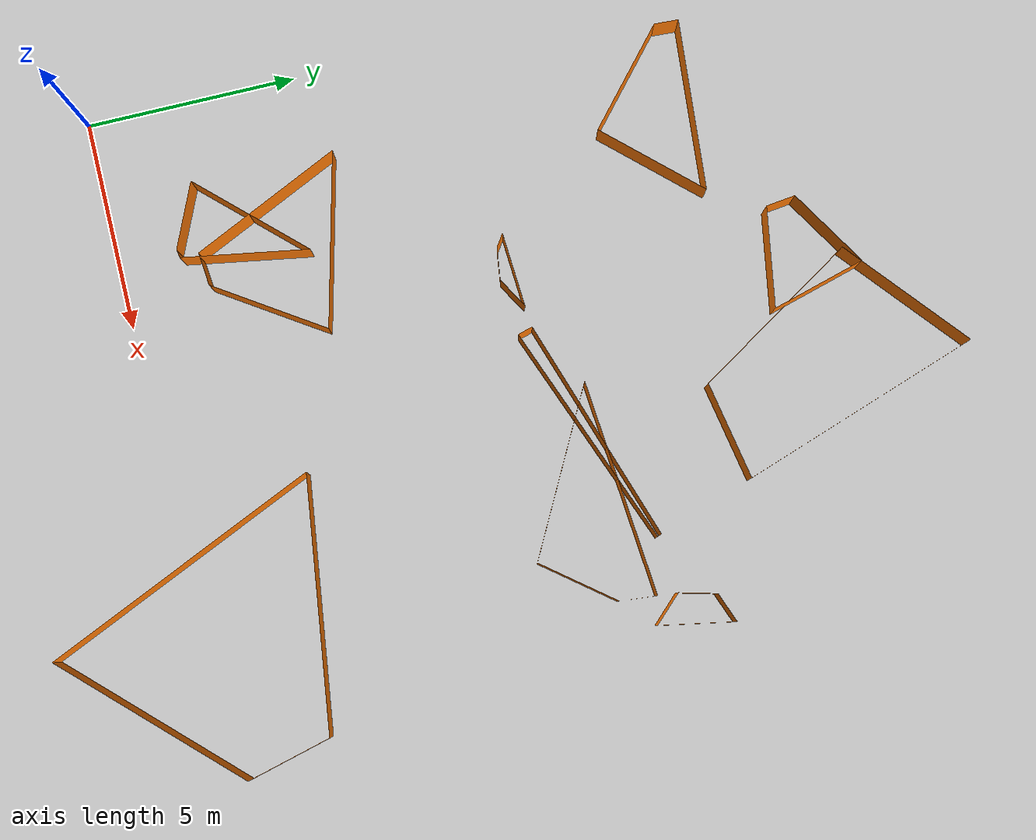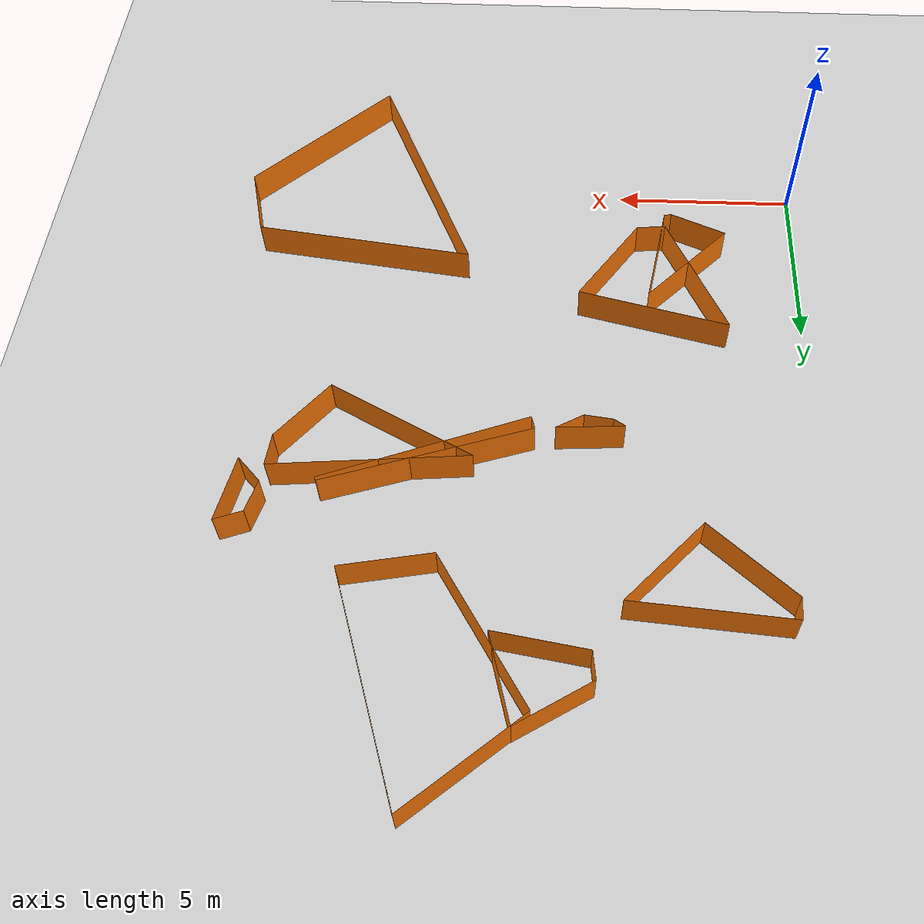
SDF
<sdf version="1.7">
 <world name="default">
  <light name="sun" type="directional">
   <pose>0 0 10 0 -0 0</pose>
   <diffuse>0.8 0.8 0.8 1</diffuse>
   <specular>0.2 0.2 0.2 1</specular>
   <attenuation>
    <range>1000</range>
    <constant>0.9</constant>
    <linear>0.01</linear>
    <quadratic>0.001</quadratic>
   </attenuation>
   <direction>-0.5 0.1 -0.9</direction>
   <spot><inner_angle>0</inner_angle><outer_angle>0</outer_angle><falloff>0</falloff></spot>
  </light>
  <model name="ground_plane">
   <static>1</static>
   <link name="link">
    <collision name="collision">
     <geometry><plane><normal>0 0 1</normal><size>100 100</size></plane></geometry>
     <surface>
      <contact><collide_bitmask>65535</collide_bitmask></contact>
      <friction><ode><mu>100</mu><mu2>50</mu2></ode></friction>
     </surface>
    </collision>
    <visual name="visual">
     <cast_shadows>0</cast_shadows>
     <geometry><plane><normal>0 0 1</normal><size>100 100</size></plane></geometry>
     <material>
      <script><uri>file://media/materials/scripts/gazebo.material</uri><name>Gazebo/Grey</name></script>
     </material>
    </visual>
   </link>
  </model>
  <gravity>0 0 -9.8</gravity>
  <magnetic_field>6e-06 2.3e-05 -4.2e-05</magnetic_field>
  <atmosphere type="adiabatic"/>
  <physics type="ode">
   <max_step_size>0.001</max_step_size>
   <real_time_factor>1</real_time_factor>
   <real_time_update_rate>1000</real_time_update_rate>
  </physics>
  <scene><ambient>0.4 0.4 0.4 1</ambient><background>0.7 0.7 0.7 1</background><shadows>1</shadows></scene>
  <spherical_coordinates>
   <surface_model>EARTH_WGS84</surface_model>
   <latitude_deg>0</latitude_deg>
   <longitude_deg>0</longitude_deg>
   <elevation>0</elevation>
   <heading_deg>0</heading_deg>
  </spherical_coordinates>
  <model name="Untitled">
   <pose>7.933 7.819 0 0 -0 0</pose>
   <link name="Wall_0">
    <collision name="Wall_0_Collision">
     <geometry><box><size>0.773179 0 1</size></box></geometry>
     <pose>0 0 0.5 0 -0 0</pose>
    </collision>
    <visual name="Wall_0_Visual">
     <pose>0 0 0.5 0 -0 0</pose>
     <geometry><box><size>0.773179 0 1</size></box></geometry>
     <material>
      <script><uri>file://media/materials/scripts/gazebo.material</uri><name>Gazebo/Grey</name></script>
      <ambient>0.996078 0.47451 0.0196078 1</ambient>
     </material>
     <meta><layer>0</layer></meta>
    </visual>
    <pose>6.6425 4.132 0 0 -0 -2.77934</pose>
   </link>
   <link name="Wall_1">
    <collision name="Wall_1_Collision">
     <geometry><box><size>0.895766 0 1</size></box></geometry>
     <pose>0 0 0.5 0 -0 0</pose>
    </collision>
    <visual name="Wall_1_Visual">
     <pose>0 0 0.5 0 -0 0</pose>
     <geometry><box><size>0.895766 0 1</size></box></geometry>
     <material>
      <script><uri>file://media/materials/scripts/gazebo.material</uri><name>Gazebo/Grey</name></script>
      <ambient>0.996078 0.47451 0.0196078 1</ambient>
     </material>
     <meta><layer>0</layer></meta>
    </visual>
    <pose>6.1665 3.562 0 0 -0 -1.82931</pose>
   </link>
   <link name="Wall_10">
    <collision name="Wall_10_Collision">
     <geometry><box><size>0.831538 0 1</size></box></geometry>
     <pose>0 0 0.5 0 -0 0</pose>
    </collision>
    <visual name="Wall_10_Visual">
     <pose>0 0 0.5 0 -0 0</pose>
     <geometry><box><size>0.831538 0 1</size></box></geometry>
     <material>
      <script><uri>file://media/materials/scripts/gazebo.material</uri><name>Gazebo/Grey</name></script>
      <ambient>0.996078 0.47451 0.0196078 1</ambient>
     </material>
     <meta><layer>0</layer></meta>
    </visual>
    <pose>-1.542 1.044 0 0 -0 0.523919</pose>
   </link>
   <link name="Wall_11">
    <collision name="Wall_11_Collision">
     <geometry><box><size>1.77972 0 1</size></box></geometry>
     <pose>0 0 0.5 0 -0 0</pose>
    </collision>
    <visual name="Wall_11_Visual">
     <pose>0 0 0.5 0 -0 0</pose>
     <geometry><box><size>1.77972 0 1</size></box></geometry>
     <material>
      <script><uri>file://media/materials/scripts/gazebo.material</uri><name>Gazebo/Grey</name></script>
      <ambient>0.996078 0.47451 0.0196078 1</ambient>
     </material>
     <meta><layer>0</layer></meta>
    </visual>
    <pose>-2.07 1.1945 0 0 -0 -3.07693</pose>
   </link>
   <link name="Wall_12">
    <collision name="Wall_12_Collision">
     <geometry><box><size>0.358063 0 1</size></box></geometry>
     <pose>0 0 0.5 0 -0 0</pose>
    </collision>
    <visual name="Wall_12_Visual">
     <pose>0 0 0.5 0 -0 0</pose>
     <geometry><box><size>0.358063 0 1</size></box></geometry>
     <material>
      <script><uri>file://media/materials/scripts/gazebo.material</uri><name>Gazebo/Grey</name></script>
      <ambient>0.996078 0.47451 0.0196078 1</ambient>
     </material>
     <meta><layer>0</layer></meta>
    </visual>
    <pose>-2.8095 1.037 0 0 -0 -0.59265</pose>
   </link>
   <link name="Wall_13">
    <collision name="Wall_13_Collision">
     <geometry><box><size>0.765691 0 1</size></box></geometry>
     <pose>0 0 0.5 0 -0 0</pose>
    </collision>
    <visual name="Wall_13_Visual">
     <pose>0 0 0.5 0 -0 0</pose>
     <geometry><box><size>0.765691 0 1</size></box></geometry>
     <material>
      <script><uri>file://media/materials/scripts/gazebo.material</uri><name>Gazebo/Grey</name></script>
      <ambient>0.996078 0.47451 0.0196078 1</ambient>
     </material>
     <meta><layer>0</layer></meta>
    </visual>
    <pose>-2.2815 0.886499 0 0 -0 -0.132293</pose>
   </link>
   <link name="Wall_15">
    <collision name="Wall_15_Collision">
     <geometry><box><size>3.2252 0 1</size></box></geometry>
     <pose>0 0 0.5 0 -0 0</pose>
    </collision>
    <visual name="Wall_15_Visual">
     <pose>0 0 0.5 0 -0 0</pose>
     <geometry><box><size>3.2252 0 1</size></box></geometry>
     <material>
      <script><uri>file://media/materials/scripts/gazebo.material</uri><name>Gazebo/Grey</name></script>
      <ambient>0.996078 0.47451 0.0196078 1</ambient>
     </material>
     <meta><layer>0</layer></meta>
    </visual>
    <pose>-4.728 -4.4585 0 0 -0 -2.32572</pose>
   </link>
   <link name="Wall_16">
    <collision name="Wall_16_Collision">
     <geometry><box><size>1.64781 0 1</size></box></geometry>
     <pose>0 0 0.5 0 -0 0</pose>
    </collision>
    <visual name="Wall_16_Visual">
     <pose>0 0 0.5 0 -0 0</pose>
     <geometry><box><size>1.64781 0 1</size></box></geometry>
     <material>
      <script><uri>file://media/materials/scripts/gazebo.material</uri><name>Gazebo/Grey</name></script>
      <ambient>0.996078 0.47451 0.0196078 1</ambient>
     </material>
     <meta><layer>0</layer></meta>
    </visual>
    <pose>-5.0805 -5.9685 0 0 -0 -0.419395</pose>
   </link>
   <link name="Wall_17">
    <collision name="Wall_17_Collision">
     <geometry><box><size>0.203855 0 1</size></box></geometry>
     <pose>0 0 0.5 0 -0 0</pose>
    </collision>
    <visual name="Wall_17_Visual">
     <pose>0 0 0.5 0 -0 0</pose>
     <geometry><box><size>0.203855 0 1</size></box></geometry>
     <material>
      <script><uri>file://media/materials/scripts/gazebo.material</uri><name>Gazebo/Grey</name></script>
      <ambient>0.996078 0.47451 0.0196078 1</ambient>
     </material>
     <meta><layer>0</layer></meta>
    </visual>
    <pose>-4.2275 -6.287 0 0 -0 0.167568</pose>
   </link>
   <link name="Wall_18">
    <collision name="Wall_18_Collision">
     <geometry><box><size>3.02824 0 1</size></box></geometry>
     <pose>0 0 0.5 0 -0 0</pose>
    </collision>
    <visual name="Wall_18_Visual">
     <pose>0 0 0.5 0 -0 0</pose>
     <geometry><box><size>3.02824 0 1</size></box></geometry>
     <material>
      <script><uri>file://media/materials/scripts/gazebo.material</uri><name>Gazebo/Grey</name></script>
      <ambient>0.996078 0.47451 0.0196078 1</ambient>
     </material>
     <meta><layer>0</layer></meta>
    </visual>
    <pose>-3.875 -4.777 0 0 -0 1.40359</pose>
   </link>
   <link name="Wall_2">
    <collision name="Wall_2_Collision">
     <geometry><box><size>0.894665 0 1</size></box></geometry>
     <pose>0 0 0.5 0 -0 0</pose>
    </collision>
    <visual name="Wall_2_Visual">
     <pose>0 0 0.5 0 -0 0</pose>
     <geometry><box><size>0.894665 0 1</size></box></geometry>
     <material>
      <script><uri>file://media/materials/scripts/gazebo.material</uri><name>Gazebo/Grey</name></script>
      <ambient>0.996078 0.47451 0.0196078 1</ambient>
     </material>
     <meta><layer>0</layer></meta>
    </visual>
    <pose>6.362 2.8065 0 0 -0 -0.805158</pose>
   </link>
   <link name="Wall_20">
    <collision name="Wall_20_Collision">
     <geometry><box><size>2.85885 0 1</size></box></geometry>
     <pose>0 0 0.5 0 -0 0</pose>
    </collision>
    <visual name="Wall_20_Visual">
     <pose>0 0 0.5 0 -0 0</pose>
     <geometry><box><size>2.85885 0 1</size></box></geometry>
     <material>
      <script><uri>file://media/materials/scripts/gazebo.material</uri><name>Gazebo/Grey</name></script>
      <ambient>0.996078 0.47451 0.0196078 1</ambient>
     </material>
     <meta><layer>0</layer></meta>
    </visual>
    <pose>-5.909 4.809 0 0 -0 -0.718567</pose>
   </link>
   <link name="Wall_21">
    <collision name="Wall_21_Collision">
     <geometry><box><size>2.89445 0 1</size></box></geometry>
     <pose>0 0 0.5 0 -0 0</pose>
    </collision>
    <visual name="Wall_21_Visual">
     <pose>0 0 0.5 0 -0 0</pose>
     <geometry><box><size>2.89445 0 1</size></box></geometry>
     <material>
      <script><uri>file://media/materials/scripts/gazebo.material</uri><name>Gazebo/Grey</name></script>
      <ambient>0.996078 0.47451 0.0196078 1</ambient>
     </material>
     <meta><layer>0</layer></meta>
    </visual>
    <pose>-3.852 4.932 0 0 -0 0.825963</pose>
   </link>
   <link name="Wall_22">
    <collision name="Wall_22_Collision">
     <geometry><box><size>4.09631 0 1</size></box></geometry>
     <pose>0 0 0.5 0 -0 0</pose>
    </collision>
    <visual name="Wall_22_Visual">
     <pose>0 0 0.5 0 -0 0</pose>
     <geometry><box><size>4.09631 0 1</size></box></geometry>
     <material>
      <script><uri>file://media/materials/scripts/gazebo.material</uri><name>Gazebo/Grey</name></script>
      <ambient>0.996078 0.47451 0.0196078 1</ambient>
     </material>
     <meta><layer>0</layer></meta>
    </visual>
    <pose>-4.9125 6.161 0 0 -0 3.06094</pose>
   </link>
   <link name="Wall_23">
    <collision name="Wall_23_Collision">
     <geometry><box><size>0.576834 0 1</size></box></geometry>
     <pose>0 0 0.5 0 -0 0</pose>
    </collision>
    <visual name="Wall_23_Visual">
     <pose>0 0 0.5 0 -0 0</pose>
     <geometry><box><size>0.576834 0 1</size></box></geometry>
     <material>
      <script><uri>file://media/materials/scripts/gazebo.material</uri><name>Gazebo/Grey</name></script>
      <ambient>0.996078 0.47451 0.0196078 1</ambient>
     </material>
     <meta><layer>0</layer></meta>
    </visual>
    <pose>-6.9695 6.038 0 0 -0 -1.62456</pose>
   </link>
   <link name="Wall_25">
    <collision name="Wall_25_Collision">
     <geometry><box><size>0.707127 0 1</size></box></geometry>
     <pose>0 0 0.5 0 -0 0</pose>
    </collision>
    <visual name="Wall_25_Visual">
     <pose>0 0 0.5 0 -0 0</pose>
     <geometry><box><size>0.707127 0 1</size></box></geometry>
     <material>
      <script><uri>file://media/materials/scripts/gazebo.material</uri><name>Gazebo/Grey</name></script>
      <ambient>0.996078 0.47451 0.0196078 1</ambient>
     </material>
     <meta><layer>0</layer></meta>
    </visual>
    <pose>-2.2085 7.609 0 0 -0 -1.4503</pose>
   </link>
   <link name="Wall_26">
    <collision name="Wall_26_Collision">
     <geometry><box><size>2.40814 0 1</size></box></geometry>
     <pose>0 0 0.5 0 -0 0</pose>
    </collision>
    <visual name="Wall_26_Visual">
     <pose>0 0 0.5 0 -0 0</pose>
     <geometry><box><size>2.40814 0 1</size></box></geometry>
     <material>
      <script><uri>file://media/materials/scripts/gazebo.material</uri><name>Gazebo/Grey</name></script>
      <ambient>0.996078 0.47451 0.0196078 1</ambient>
     </material>
     <meta><layer>0</layer></meta>
    </visual>
    <pose>-0.9775 7.065 0 0 -0 -0.160984</pose>
   </link>
   <link name="Wall_27">
    <collision name="Wall_27_Collision">
     <geometry><box><size>2.31196 0 1</size></box></geometry>
     <pose>0 0 0.5 0 -0 0</pose>
    </collision>
    <visual name="Wall_27_Visual">
     <pose>0 0 0.5 0 -0 0</pose>
     <geometry><box><size>2.31196 0 1</size></box></geometry>
     <material>
      <script><uri>file://media/materials/scripts/gazebo.material</uri><name>Gazebo/Grey</name></script>
      <ambient>0.996078 0.47451 0.0196078 1</ambient>
     </material>
     <meta><layer>0</layer></meta>
    </visual>
    <pose>-0.0995 7.9855 0 0 -0 1.84274</pose>
   </link>
   <link name="Wall_28">
    <collision name="Wall_28_Collision">
     <geometry><box><size>2.16486 0 1</size></box></geometry>
     <pose>0 0 0.5 0 -0 0</pose>
    </collision>
    <visual name="Wall_28_Visual">
     <pose>0 0 0.5 0 -0 0</pose>
     <geometry><box><size>2.16486 0 1</size></box></geometry>
     <material>
      <script><uri>file://media/materials/scripts/gazebo.material</uri><name>Gazebo/Grey</name></script>
      <ambient>0.996078 0.47451 0.0196078 1</ambient>
     </material>
     <meta><layer>0</layer></meta>
    </visual>
    <pose>-1.3305 8.5295 0 0 -0 -2.58755</pose>
   </link>
   <link name="Wall_3">
    <collision name="Wall_3_Collision">
     <geometry><box><size>1.81561 0 1</size></box></geometry>
     <pose>0 0 0.5 0 -0 0</pose>
    </collision>
    <visual name="Wall_3_Visual">
     <pose>0 0 0.5 0 -0 0</pose>
     <geometry><box><size>1.81561 0 1</size></box></geometry>
     <material>
      <script><uri>file://media/materials/scripts/gazebo.material</uri><name>Gazebo/Grey</name></script>
      <ambient>0.996078 0.47451 0.0196078 1</ambient>
     </material>
     <meta><layer>0</layer></meta>
    </visual>
    <pose>6.838 3.3765 0 0 -0 1.3869</pose>
   </link>
   <link name="Wall_30">
    <collision name="Wall_30_Collision">
     <geometry><box><size>3.92022 0 1</size></box></geometry>
     <pose>0 0 0.5 0 -0 0</pose>
    </collision>
    <visual name="Wall_30_Visual">
     <pose>0 0 0.5 0 -0 0</pose>
     <geometry><box><size>3.92022 0 1</size></box></geometry>
     <material>
      <script><uri>file://media/materials/scripts/gazebo.material</uri><name>Gazebo/Grey</name></script>
      <ambient>0.996078 0.47451 0.0196078 1</ambient>
     </material>
     <meta><layer>0</layer></meta>
    </visual>
    <pose>-4.956 -4.0465 0 0 -0 -1.13693</pose>
   </link>
   <link name="Wall_31">
    <collision name="Wall_31_Collision">
     <geometry><box><size>0.791467 0 1</size></box></geometry>
     <pose>0 0 0.5 0 -0 0</pose>
    </collision>
    <visual name="Wall_31_Visual">
     <pose>0 0 0.5 0 -0 0</pose>
     <geometry><box><size>0.791467 0 1</size></box></geometry>
     <material>
      <script><uri>file://media/materials/scripts/gazebo.material</uri><name>Gazebo/Grey</name></script>
      <ambient>0.996078 0.47451 0.0196078 1</ambient>
     </material>
     <meta><layer>0</layer></meta>
    </visual>
    <pose>-3.738 -5.788 0 0 -0 0.093634</pose>
   </link>
   <link name="Wall_32">
    <collision name="Wall_32_Collision">
     <geometry><box><size>2.95936 0 1</size></box></geometry>
     <pose>0 0 0.5 0 -0 0</pose>
    </collision>
    <visual name="Wall_32_Visual">
     <pose>0 0 0.5 0 -0 0</pose>
     <geometry><box><size>2.95936 0 1</size></box></geometry>
     <material>
      <script><uri>file://media/materials/scripts/gazebo.material</uri><name>Gazebo/Grey</name></script>
      <ambient>0.996078 0.47451 0.0196078 1</ambient>
     </material>
     <meta><layer>0</layer></meta>
    </visual>
    <pose>-2.529 -4.516 0 0 -0 0.98748</pose>
   </link>
   <link name="Wall_33">
    <collision name="Wall_33_Collision">
     <geometry><box><size>4.19029 0 1</size></box></geometry>
     <pose>0 0 0.5 0 -0 0</pose>
    </collision>
    <visual name="Wall_33_Visual">
     <pose>0 0 0.5 0 -0 0</pose>
     <geometry><box><size>4.19029 0 1</size></box></geometry>
     <material>
      <script><uri>file://media/materials/scripts/gazebo.material</uri><name>Gazebo/Grey</name></script>
      <ambient>0.996078 0.47451 0.0196078 1</ambient>
     </material>
     <meta><layer>0</layer></meta>
    </visual>
    <pose>-3.747 -2.7745 0 0 -0 2.89742</pose>
   </link>
   <link name="Wall_35">
    <collision name="Wall_35_Collision">
     <geometry><box><size>5.18272 0 1</size></box></geometry>
     <pose>0 0 0.5 0 -0 0</pose>
    </collision>
    <visual name="Wall_35_Visual">
     <pose>0 0 0.5 0 -0 0</pose>
     <geometry><box><size>5.18272 0 1</size></box></geometry>
     <material>
      <script><uri>file://media/materials/scripts/gazebo.material</uri><name>Gazebo/Grey</name></script>
      <ambient>0.996078 0.47451 0.0196078 1</ambient>
     </material>
     <meta><layer>0</layer></meta>
    </visual>
    <pose>3.43 2.4155 0 0 -0 -3.05214</pose>
   </link>
   <link name="Wall_36">
    <collision name="Wall_36_Collision">
     <geometry><box><size>4.313 0 1</size></box></geometry>
     <pose>0 0 0.5 0 -0 0</pose>
    </collision>
    <visual name="Wall_36_Visual">
     <pose>0 0 0.5 0 -0 0</pose>
     <geometry><box><size>4.313 0 1</size></box></geometry>
     <material>
      <script><uri>file://media/materials/scripts/gazebo.material</uri><name>Gazebo/Grey</name></script>
      <ambient>0.996078 0.47451 0.0196078 1</ambient>
     </material>
     <meta><layer>0</layer></meta>
    </visual>
    <pose>2.7525 1.1705 0 0 -0 -0.489262</pose>
   </link>
   <link name="Wall_37">
    <collision name="Wall_37_Collision">
     <geometry><box><size>2.06044 0 1</size></box></geometry>
     <pose>0 0 0.5 0 -0 0</pose>
    </collision>
    <visual name="Wall_37_Visual">
     <pose>0 0 0.5 0 -0 0</pose>
     <geometry><box><size>2.06044 0 1</size></box></geometry>
     <material>
      <script><uri>file://media/materials/scripts/gazebo.material</uri><name>Gazebo/Grey</name></script>
      <ambient>0.996078 0.47451 0.0196078 1</ambient>
     </material>
     <meta><layer>0</layer></meta>
    </visual>
    <pose>5.2945 0.9655 0 0 -0 0.902347</pose>
   </link>
   <link name="Wall_38">
    <collision name="Wall_38_Collision">
     <geometry><box><size>0.876478 0 1</size></box></geometry>
     <pose>0 0 0.5 0 -0 0</pose>
    </collision>
    <visual name="Wall_38_Visual">
     <pose>0 0 0.5 0 -0 0</pose>
     <geometry><box><size>0.876478 0 1</size></box></geometry>
     <material>
      <script><uri>file://media/materials/scripts/gazebo.material</uri><name>Gazebo/Grey</name></script>
      <ambient>0.996078 0.47451 0.0196078 1</ambient>
     </material>
     <meta><layer>0</layer></meta>
    </visual>
    <pose>5.972 2.2105 0 0 -0 1.48169</pose>
   </link>
   <link name="Wall_40">
    <collision name="Wall_40_Collision">
     <geometry><box><size>0.102157 0 1</size></box></geometry>
     <pose>0 0 0.5 0 -0 0</pose>
    </collision>
    <visual name="Wall_40_Visual">
     <pose>0 0 0.5 0 -0 0</pose>
     <geometry><box><size>0.102157 0 1</size></box></geometry>
     <material>
      <script><uri>file://media/materials/scripts/gazebo.material</uri><name>Gazebo/Grey</name></script>
      <ambient>0.996078 0.47451 0.0196078 1</ambient>
     </material>
     <meta><layer>0</layer></meta>
    </visual>
    <pose>4.69 3.021 0 0 -0 1.97312</pose>
   </link>
   <link name="Wall_41">
    <collision name="Wall_41_Collision">
     <geometry><box><size>5.62 0 1</size></box></geometry>
     <pose>0 0 0.5 0 -0 0</pose>
    </collision>
    <visual name="Wall_41_Visual">
     <pose>0 0 0.5 0 -0 0</pose>
     <geometry><box><size>5.62 0 1</size></box></geometry>
     <material>
      <script><uri>file://media/materials/scripts/gazebo.material</uri><name>Gazebo/Grey</name></script>
      <ambient>0.996078 0.47451 0.0196078 1</ambient>
     </material>
     <meta><layer>0</layer></meta>
    </visual>
    <pose>2.003 2.183 0 0 -0 -2.82119</pose>
   </link>
   <link name="Wall_42">
    <collision name="Wall_42_Collision">
     <geometry><box><size>0.36456 0 1</size></box></geometry>
     <pose>0 0 0.5 0 -0 0</pose>
    </collision>
    <visual name="Wall_42_Visual">
     <pose>0 0 0.5 0 -0 0</pose>
     <geometry><box><size>0.36456 0 1</size></box></geometry>
     <material>
      <script><uri>file://media/materials/scripts/gazebo.material</uri><name>Gazebo/Grey</name></script>
      <ambient>0.996078 0.47451 0.0196078 1</ambient>
     </material>
     <meta><layer>0</layer></meta>
    </visual>
    <pose>-0.613 1.123 0 0 -0 -1.28722</pose>
   </link>
   <link name="Wall_43">
    <collision name="Wall_43_Collision">
     <geometry><box><size>5.64789 0 1</size></box></geometry>
     <pose>0 0 0.5 0 -0 0</pose>
    </collision>
    <visual name="Wall_43_Visual">
     <pose>0 0 0.5 0 -0 0</pose>
     <geometry><box><size>5.64789 0 1</size></box></geometry>
     <material>
      <script><uri>file://media/materials/scripts/gazebo.material</uri><name>Gazebo/Grey</name></script>
      <ambient>0.996078 0.47451 0.0196078 1</ambient>
     </material>
     <meta><layer>0</layer></meta>
    </visual>
    <pose>2.074 1.961 0 0 -0 0.366894</pose>
   </link>
   <link name="Wall_45">
    <collision name="Wall_45_Collision">
     <geometry><box><size>2.06015 0 1</size></box></geometry>
     <pose>0 0 0.5 0 -0 0</pose>
    </collision>
    <visual name="Wall_45_Visual">
     <pose>0 0 0.5 0 -0 0</pose>
     <geometry><box><size>2.06015 0 1</size></box></geometry>
     <material>
      <script><uri>file://media/materials/scripts/gazebo.material</uri><name>Gazebo/Grey</name></script>
      <ambient>0.996078 0.47451 0.0196078 1</ambient>
     </material>
     <meta><layer>0</layer></meta>
    </visual>
    <pose>7.676 -6.3325 0 0 -0 1.82296</pose>
   </link>
   <link name="Wall_46">
    <collision name="Wall_46_Collision">
     <geometry><box><size>6.06586 0 1</size></box></geometry>
     <pose>0 0 0.5 0 -0 0</pose>
    </collision>
    <visual name="Wall_46_Visual">
     <pose>0 0 0.5 0 -0 0</pose>
     <geometry><box><size>6.06586 0 1</size></box></geometry>
     <material>
      <script><uri>file://media/materials/scripts/gazebo.material</uri><name>Gazebo/Grey</name></script>
      <ambient>0.996078 0.47451 0.0196078 1</ambient>
     </material>
     <meta><layer>0</layer></meta>
    </visual>
    <pose>4.4135 -4.928 0 0 -0 3.00699</pose>
   </link>
   <link name="Wall_47">
    <collision name="Wall_47_Collision">
     <geometry><box><size>7.17374 0 1</size></box></geometry>
     <pose>0 0 0.5 0 -0 0</pose>
    </collision>
    <visual name="Wall_47_Visual">
     <pose>0 0 0.5 0 -0 0</pose>
     <geometry><box><size>7.17374 0 1</size></box></geometry>
     <material>
      <script><uri>file://media/materials/scripts/gazebo.material</uri><name>Gazebo/Grey</name></script>
      <ambient>0.996078 0.47451 0.0196078 1</ambient>
     </material>
     <meta><layer>0</layer></meta>
    </visual>
    <pose>2.8585 -7.8015 0 0 -0 -1.15448</pose>
   </link>
   <link name="Wall_48">
    <collision name="Wall_48_Collision">
     <geometry><box><size>5.2164 0 1</size></box></geometry>
     <pose>0 0 0.5 0 -0 0</pose>
    </collision>
    <visual name="Wall_48_Visual">
     <pose>0 0 0.5 0 -0 0</pose>
     <geometry><box><size>5.2164 0 1</size></box></geometry>
     <material>
      <script><uri>file://media/materials/scripts/gazebo.material</uri><name>Gazebo/Grey</name></script>
      <ambient>0.996078 0.47451 0.0196078 1</ambient>
     </material>
     <meta><layer>0</layer></meta>
    </visual>
    <pose>6.121 -9.206 0 0 -0 0.80275</pose>
   </link>
   <link name="Wall_5">
    <collision name="Wall_5_Collision">
     <geometry><box><size>6.01731 0 1</size></box></geometry>
     <pose>0 0 0.5 0 -0 0</pose>
    </collision>
    <visual name="Wall_5_Visual">
     <pose>0 0 0.5 0 -0 0</pose>
     <geometry><box><size>6.01731 0 1</size></box></geometry>
     <material>
      <script><uri>file://media/materials/scripts/gazebo.material</uri><name>Gazebo/Grey</name></script>
      <ambient>0.996078 0.47451 0.0196078 1</ambient>
     </material>
     <meta><layer>0</layer></meta>
    </visual>
    <pose>2.931 8.234 0 0 -0 1.89906</pose>
   </link>
   <link name="Wall_6">
    <collision name="Wall_6_Collision">
     <geometry><box><size>3.64388 0 1</size></box></geometry>
     <pose>0 0 0.5 0 -0 0</pose>
    </collision>
    <visual name="Wall_6_Visual">
     <pose>0 0 0.5 0 -0 0</pose>
     <geometry><box><size>3.64388 0 1</size></box></geometry>
     <material>
      <script><uri>file://media/materials/scripts/gazebo.material</uri><name>Gazebo/Grey</name></script>
      <ambient>0.996078 0.47451 0.0196078 1</ambient>
     </material>
     <meta><layer>0</layer></meta>
    </visual>
    <pose>0.569 9.9065 0 0 -0 -2.44032</pose>
   </link>
   <link name="Wall_7">
    <collision name="Wall_7_Collision">
     <geometry><box><size>4.47129 0 1</size></box></geometry>
     <pose>0 0 0.5 0 -0 0</pose>
    </collision>
    <visual name="Wall_7_Visual">
     <pose>0 0 0.5 0 -0 0</pose>
     <geometry><box><size>4.47129 0 1</size></box></geometry>
     <material>
      <script><uri>file://media/materials/scripts/gazebo.material</uri><name>Gazebo/Grey</name></script>
      <ambient>0.996078 0.47451 0.0196078 1</ambient>
     </material>
     <meta><layer>0</layer></meta>
    </visual>
    <pose>0.364 6.8365 0 0 -0 -1.01108</pose>
   </link>
   <link name="Wall_8">
    <collision name="Wall_8_Collision">
     <geometry><box><size>2.39158 0 1</size></box></geometry>
     <pose>0 0 0.5 0 -0 0</pose>
    </collision>
    <visual name="Wall_8_Visual">
     <pose>0 0 0.5 0 -0 0</pose>
     <geometry><box><size>2.39158 0 1</size></box></geometry>
     <material>
      <script><uri>file://media/materials/scripts/gazebo.material</uri><name>Gazebo/Grey</name></script>
      <ambient>0.996078 0.47451 0.0196078 1</ambient>
     </material>
     <meta><layer>0</layer></meta>
    </visual>
    <pose>2.726 5.164 0 0 -0 0.186735</pose>
   </link>
   <static>1</static>
  </model>
 </world>
</sdf>
